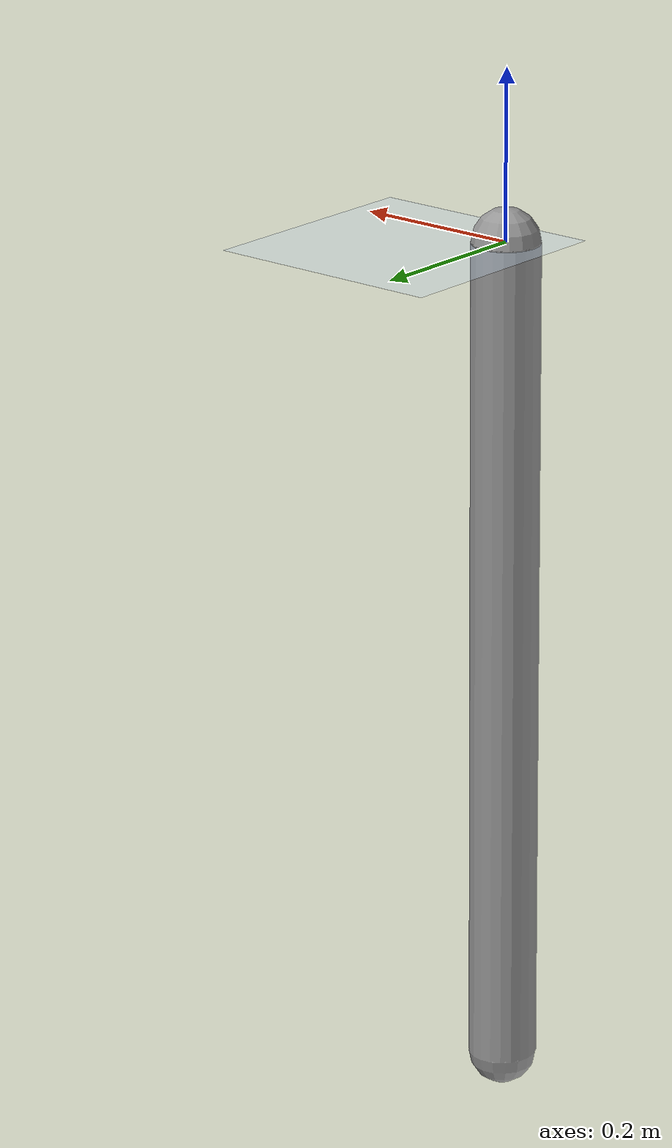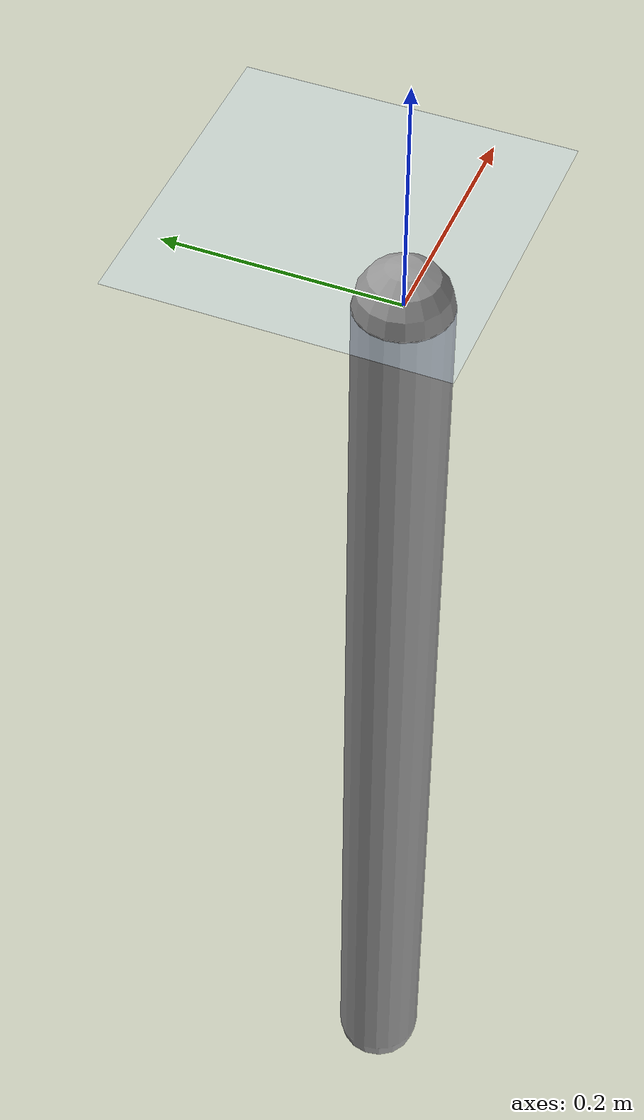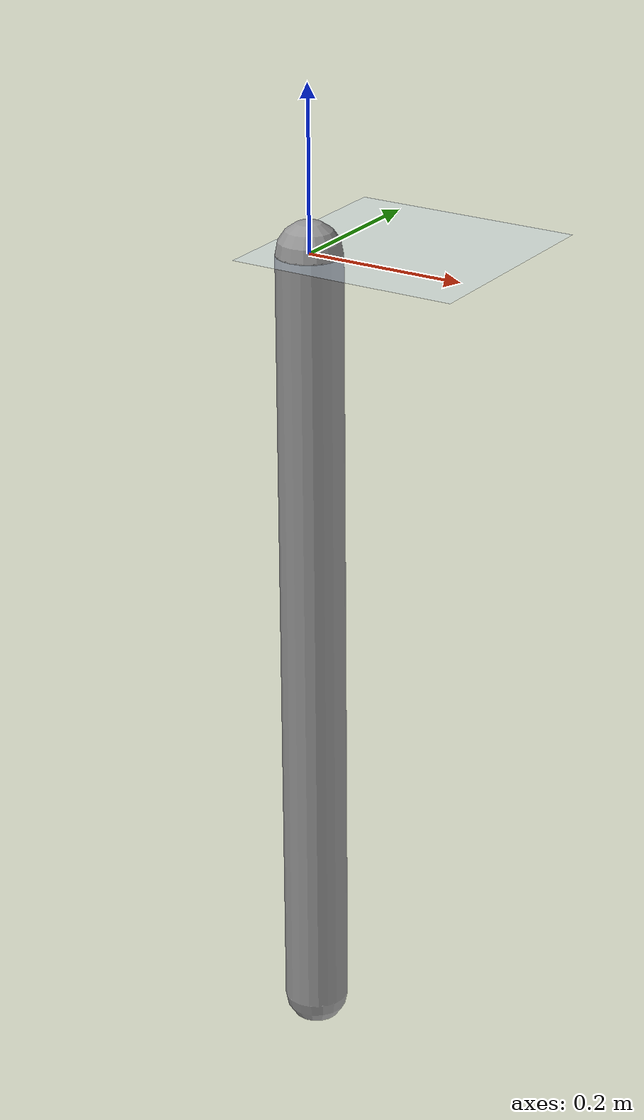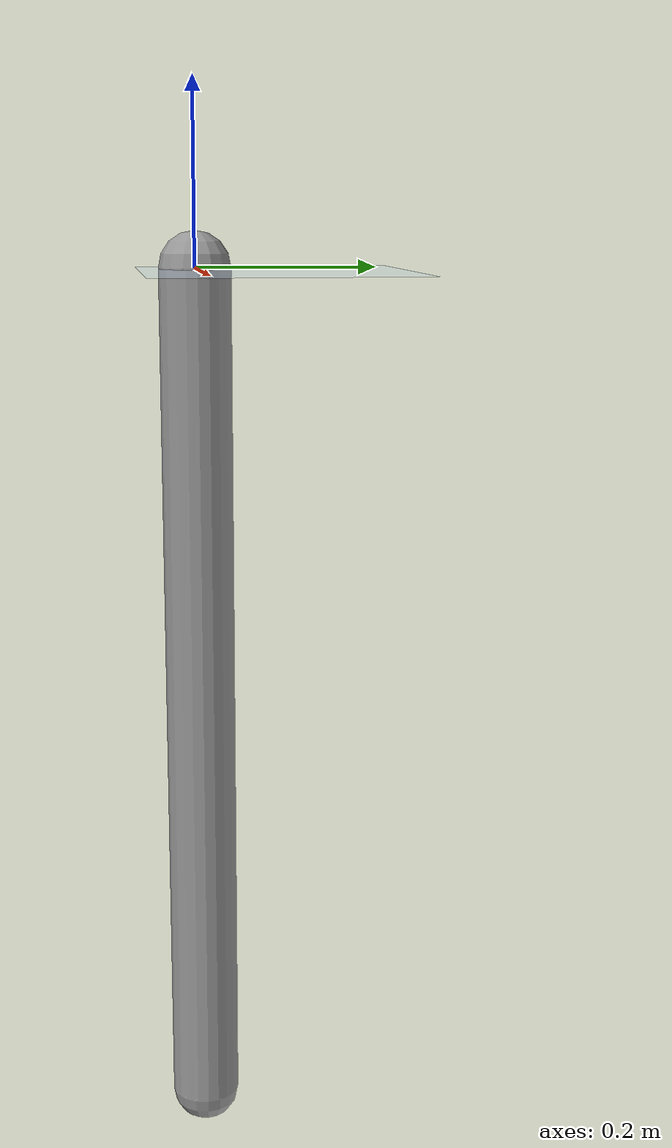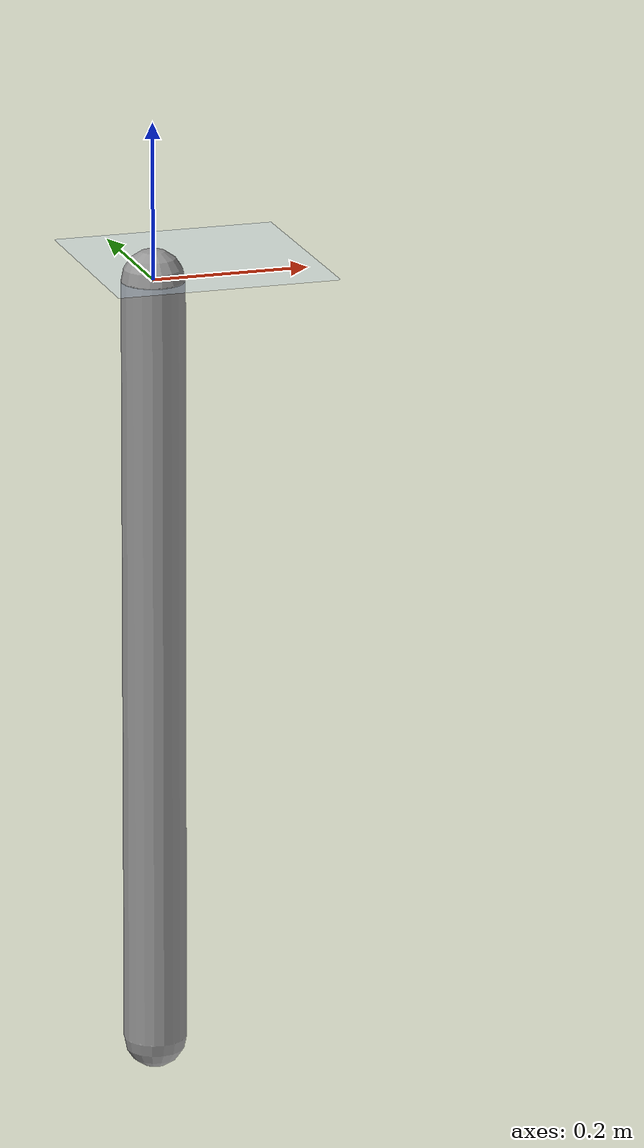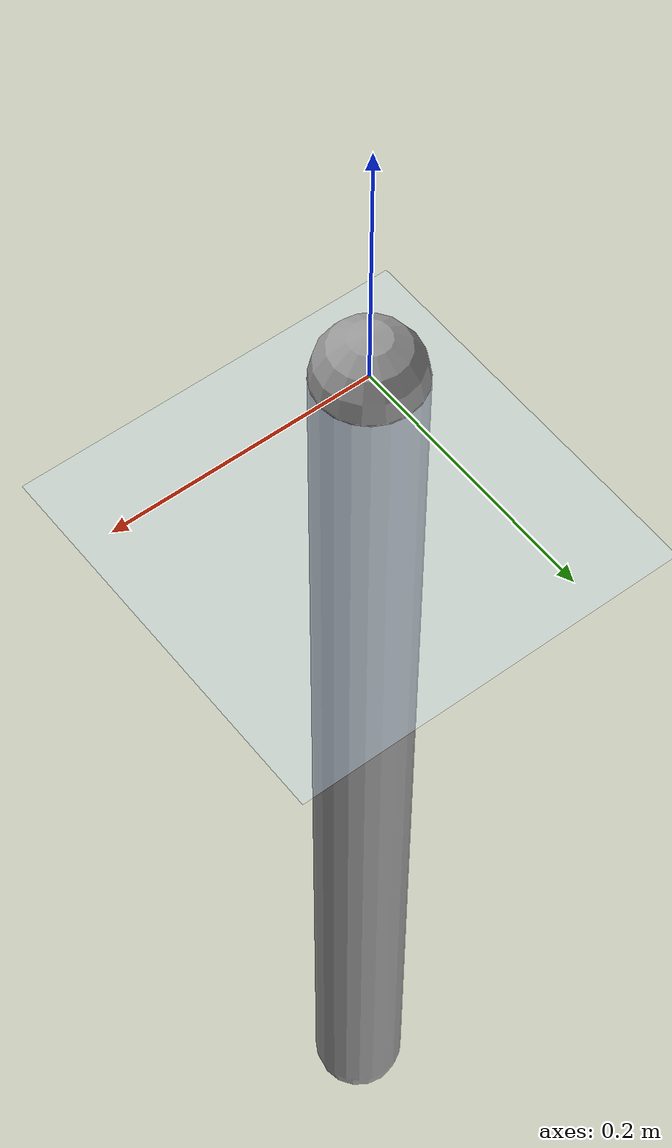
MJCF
<mujoco model="pendulum">
  <compiler angle="degree" inertiafromgeom="true"/>
  <option timestep="0.002" gravity="0 0 -9.81"/>
  <worldbody>
    <body name="base" pos="0 0 0">
      <geom type="plane" size="2 2 0.1" rgba="0.8 0.9 1 1"/>
    </body>
    <body name="link" pos="0 0 1">
      <!-- Local coordinates preserve the original global joint and capsule positions. -->
      <joint name="hinge" type="hinge" axis="0 1 0" pos="0 0 -1"/>
      <geom type="capsule" fromto="0 0 -1 0 0 -2" size="0.04" rgba="0.6 0.6 0.6 1"/>
    </body>
  </worldbody>
</mujoco>
